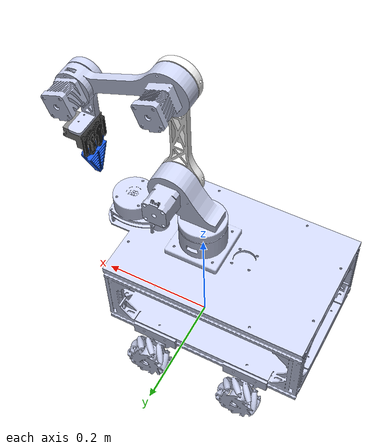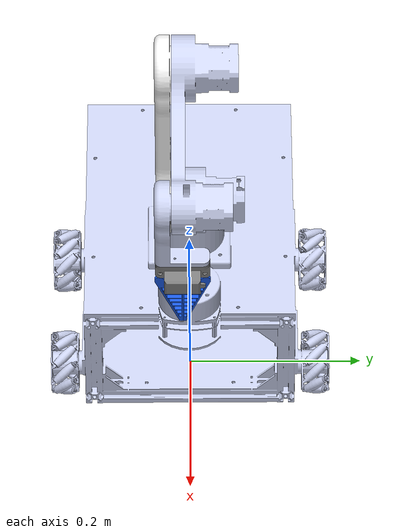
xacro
<?xml version="1.0"?>

<robot xmlns:xacro="http://www.ros.org/wiki/xacro" name="robot_arm_4_dof">

  <!-- BAN CHO ROS 2 JAZZY + GAZEBO HARMONIC -->
  <!-- use_gazebo = false (mac dinh): dung cho MoveIt demo, khong co khoi ros2_control Gazebo -->
  <!-- use_gazebo = true: bat khoi ros2_control gz_ros2_control va plugin Gazebo Harmonic -->
  <xacro:arg name="use_gazebo" default="false"/>
  <!-- use_real_hw = true: ros2_control noi voi robot that qua topic (JointStateTopicSystem) -->
  <!-- Khong bat dong thoi use_gazebo va use_real_hw -->
  <xacro:arg name="use_real_hw" default="false"/>

  <!-- GRIPPER FIN RAY, CO CAU 4 KHAU BINH HANH, MESH THAT TU STL -->
  <!-- Toa do lay tu STL, quy ve he LINK_4 (goc tai tam lo khop JOINT_4) -->
  <!-- Mat bat gripper cua LINK_4 la mat phang x = 78.371 mm, kich thuoc 25 x 60 mm -->
  <!-- Goc GRIPPER_BASE dat tai tam mat bat, y = 0, z = 13.345 mm -->
  <!-- Mat phang chua 2 ngon nam o y = +13.5 mm so voi mat phang LINK_4 -->
  <!-- Moi ngon treo bang 2 thanh song song (tay quay trong dai 33 mm, thanh ngoai dai 34 mm) -->
  <!-- 2 banh rang an khop nen 2 ben quay nguoc chieu, 2 ngon mo deu va luon song song -->
  <!-- Chi GRIPPER_JOINT duoc dieu khien, 5 khop con lai la mimic chay theo -->

  <!-- Tam mat bat gripper trong he LINK_4, don vi met -->
  <xacro:property name="grip_face_x" value="0.078371"/>
  <xacro:property name="grip_face_y" value="0.0"/>
  <xacro:property name="grip_face_z" value="0.013345"/>

  <!-- Goc quay tay quay khi mo het (rad). 0 la dong, 2 ngon cham nhau giua mat bat -->
  <!-- 0.6 rad thi moi ngon dat ra 18.6 mm. CHUA CO SO DO THAT, sua theo co cau -->
  <xacro:property name="grip_open_angle" value="1.141"/>
  <!-- Noi rong gioi han khop mot chut de khop khong ket o bien gay rung -->
  <xacro:property name="grip_limit_margin" value="0.02"/>
  <xacro:property name="grip_effort" value="2.0"/>
  <xacro:property name="grip_velocity" value="2.0"/>

  <!-- Khoi luong de gripper tinh tu the tich STL (1.02 g/cm3). Neu de co servo that thi tang len -->
  <xacro:property name="grip_base_mass" value="0.04966"/>

  <!-- MACRO TAO LINK -->

  <xacro:macro
    name="make_link"
    params="name mesh mass ixx iyy izz ixy ixz iyz origin_xyz rgba">

    <link name="${name}">

      <inertial>
        <origin xyz="${origin_xyz}" rpy="0 0 0"/>
        <mass value="${mass}"/>
        <inertia
          ixx="${ixx}"
          iyy="${iyy}"
          izz="${izz}"
          ixy="${ixy}"
          ixz="${ixz}"
          iyz="${iyz}"/>
      </inertial>

      <visual>
        <origin xyz="0 0 0" rpy="0 0 0"/>
        <geometry>
          <mesh filename="package://robot_arm_4_dof/meshes/${mesh}"/>
        </geometry>
        <material name="">
          <color rgba="${rgba}"/>
        </material>
      </visual>

      <collision>
        <origin xyz="0 0 0" rpy="0 0 0"/>
        <geometry>
          <mesh filename="package://robot_arm_4_dof/meshes/${mesh}"/>
        </geometry>
      </collision>

    </link>

  </xacro:macro>

  <!-- MACRO THONG SO VAT LY GAZEBO CHO LINK -->
  <!-- [JAZZY] Bo kp, kd, minDepth, maxVel vi chi bo giai ODE dung, Harmonic mac dinh dung DART -->
  <!-- Tham so color giu lai de cac dong goi macro phia duoi khong phai sua -->

  <xacro:macro
    name="gazebo_link"
    params="name color">

    <gazebo reference="${name}">
      <self_collide>false</self_collide>
      <mu1>0.8</mu1>
      <mu2>0.8</mu2>
    </gazebo>

  </xacro:macro>

  <!-- MACRO THONG SO VAT LY GAZEBO CHO JOINT -->
  <!-- Hai the duoi day danh cho Gazebo Classic/ODE, Harmonic bo qua, giu lai khong anh huong -->

  <xacro:macro
    name="gazebo_joint"
    params="name">

    <gazebo reference="${name}">
      <implicitSpringDamper>true</implicitSpringDamper>
      <provideFeedback>true</provideFeedback>
    </gazebo>

  </xacro:macro>

  <!-- MACRO KHOP CHO ROS2 CONTROL -->

  <xacro:macro
    name="control_joint"
    params="name initial:=0.0">

    <joint name="${name}">
      <command_interface name="position"/>
      <state_interface name="position">
        <param name="initial_value">${initial}</param>
      </state_interface>
      <state_interface name="velocity"/>
    </joint>

  </xacro:macro>

  <xacro:macro
    name="mimic_control_joint"
    params="name mult">

    <joint name="${name}">
      <state_interface name="position"/>
      <state_interface name="velocity"/>
    </joint>

  </xacro:macro>

  <!-- WORLD -->

  <link name="world"/>

  <!-- BASE LINK -->

  <xacro:make_link
    name="base_link"
    mesh="base_link.STL"
    mass="2.13756581501033"
    ixx="0.00446281750835748"
    iyy="0.00990397404875466"
    izz="0.0138898179140011"
    ixy="-1.16297685620602E-07"
    ixz="-2.19269245347853E-05"
    iyz="3.69353321786601E-07"
    origin_xyz="-0.0361911363940385 7.68209464105385E-06 -0.0733100701888367"
    rgba="0.792156862745098 0.819607843137255 0.933333333333333 1"
  />

  <!-- World -> Base -->
  <!-- File URDF moi xuat theo truc Z huong len (JOINT_1 xoay quanh Z), nen khong xoay -->
  <!-- z = 0.2 giu nhu file cu de phan de nam duoi goc toa do khong chim xuong san -->
  <joint name="world_to_base" type="fixed">
    <parent link="world"/>
    <child link="base_link"/>
    <origin xyz="0 0 0.2" rpy="0 0 0"/>
  </joint>

  <!-- LINK 1 -->

  <xacro:make_link
    name="LINK_1"
    mesh="LINK_1.STL"
    mass="0.300203978957691"
    ixx="0.000202361108949247"
    iyy="0.000322205876856537"
    izz="0.000227849313062329"
    ixy="-8.49700154808772E-07"
    ixz="-8.62565979202644E-05"
    iyz="-8.96444276733961E-07"
    origin_xyz="0.0262680360960205 0.00936849816356077 0.0385186340588518"
    rgba="0.792156862745098 0.819607843137255 0.933333333333333 1"
  />

  <joint name="JOINT_1" type="revolute">
    <origin xyz="0 0 0.0498" rpy="0 0 0"/>
    <parent link="base_link"/>
    <child link="LINK_1"/>
    <axis xyz="0 0 -1"/>
    <limit lower="-1.57" upper="1.57" effort="10" velocity="10"/>
    <dynamics damping="0.05" friction="0.0"/>
  </joint>

  <!-- LINK 2 -->

  <xacro:make_link
    name="LINK_2"
    mesh="LINK_2.STL"
    mass="0.22616543710862"
    ixx="0.00172816534876037"
    iyy="7.87016673061041E-05"
    izz="0.00178654798836788"
    ixy="-8.39655178369909E-07"
    ixz="4.02141351179285E-09"
    iyz="-1.05918369473504E-08"
    origin_xyz="9.97377047012027E-05 -0.0999401206655697 -0.00664432460836228"
    rgba="1 1 1 1"
  />

  <joint name="JOINT_2" type="revolute">
    <origin xyz="0.05 -0.020425 0.062" rpy="-1.5707963267949 0 0"/>
    <parent link="LINK_1"/>
    <child link="LINK_2"/>
    <axis xyz="0 0 -1"/>
    <limit lower="-2.618" upper="2.618" effort="10" velocity="10"/>
    <dynamics damping="0.05" friction="0.0"/>
  </joint>

  <!-- LINK 3 -->

  <xacro:make_link
    name="LINK_3"
    mesh="LINK_3.STL"
    mass="0.28089697948474"
    ixx="8.30377524821825E-05"
    iyy="0.000501796992912529"
    izz="0.000524464065541109"
    ixy="3.23085942327299E-07"
    ixz="4.2195120669867E-06"
    iyz="-2.09350472695333E-07"
    origin_xyz="0.0665688329589206 7.00383893746936E-05 0.0306161777190934"
    rgba="0.792156862745098 0.819607843137255 0.933333333333333 1"
  />

  <joint name="JOINT_3" type="revolute">
    <origin xyz="0 -0.2 0.00179999999999997" rpy="0 0 0.349065850398867"/>
    <parent link="LINK_2"/>
    <child link="LINK_3"/>
    <axis xyz="0 0 1"/>
    <limit lower="-1.57" upper="1.57" effort="10" velocity="10"/>
    <dynamics damping="0.05" friction="0.0"/>
  </joint>

  <!-- LINK 4 -->

  <xacro:make_link
    name="LINK_4"
    mesh="LINK_4.STL"
    mass="0.06452"
    ixx="1.7004E-05"
    iyy="7.0959E-05"
    izz="7.4844E-05"
    ixy="8.6595E-08"
    ixz="-6.2201E-06"
    iyz="-5.7601E-09"
    origin_xyz="0.021089 4.4987E-05 -0.0042584"
    rgba="0.79216 0.81961 0.93333 1"
  />

  <!-- Khop co tay, revolute gioi han +-1.57 rad theo thiet ke -->
  <joint name="JOINT_4" type="revolute">
    <origin xyz="0.17 0 -0.0018" rpy="0 0 1.2217"/>
    <parent link="LINK_3"/>
    <child link="LINK_4"/>
    <axis xyz="0 0 -1"/>
    <limit lower="-1.57" upper="1.57" effort="10" velocity="10"/>
    <dynamics damping="0.05" friction="0.0"/>
  </joint>

  <!-- GRIPPER -->
  <!-- LINK_4 (fixed) GRIPPER_BASE -->
  <!--   GRIPPER_BASE (GRIPPER_JOINT, dieu khien) R_CRANK (R_FINGER_JOINT, mimic) RG_FINGER -->
  <!--   GRIPPER_BASE (R_BAR_JOINT, mimic) R_BAR -->
  <!--   GRIPPER_BASE (L_CRANK_JOINT, mimic) L_CRANK (L_FINGER_JOINT, mimic) LG_FINGER -->
  <!--   GRIPPER_BASE (L_BAR_JOINT, mimic) L_BAR -->
  <!-- Mesh cua moi link da nam san trong he toa do khop cua link do -->

  <link name="GRIPPER_BASE">
    <inertial>
      <origin xyz="0.015149 -0.004647 0.000159" rpy="0 0 0"/>
      <mass value="${grip_base_mass}"/>
      <inertia
        ixx="${grip_base_mass*3.574118e-04}"
        iyy="${grip_base_mass*2.785059e-04}"
        izz="${grip_base_mass*2.074104e-04}"
        ixy="${grip_base_mass*5.437499e-06}"
        ixz="${grip_base_mass*-2.919664e-07}"
        iyz="${grip_base_mass*-1.268489e-06}"/>
    </inertial>
    <visual>
      <origin xyz="0 0 0" rpy="0 0 0"/>
      <geometry>
        <mesh filename="package://robot_arm_4_dof/meshes/GRIPPER_BASE.STL"/>
      </geometry>
      <material name="">
        <color rgba="0.5 0.5 0.5 1"/>
      </material>
    </visual>
    <collision>
      <origin xyz="0 0 0" rpy="0 0 0"/>
      <geometry>
        <mesh filename="package://robot_arm_4_dof/meshes/GRIPPER_BASE.STL"/>
      </geometry>
    </collision>
  </link>

  <!-- De gripper ap phang len mat bat cua LINK_4, khong xoay -->
  <joint name="LINK_4_TO_GRIPPER_BASE" type="fixed">
    <parent link="LINK_4"/>
    <child link="GRIPPER_BASE"/>
    <origin xyz="${grip_face_x} ${grip_face_y} ${grip_face_z}" rpy="0 0 0"/>
  </joint>

  <!-- ===== BEN +z ===== -->
  <!-- Tay quay trong, gan voi banh rang co tay servo. Khop DUOC DIEU KHIEN -->
  <!-- q duong thi dau tay quay di len +z, ngon mo ra -->
  <xacro:property name="r_crank_mass" value="0.003535"/>
  <link name="R_CRANK">
    <inertial>
      <origin xyz="0.010844 0.016335 0.000001" rpy="0 0 0"/>
      <mass value="${r_crank_mass}"/>
      <inertia
        ixx="${r_crank_mass*2.353771e-05}"
        iyy="${r_crank_mass*1.769451e-04}"
        izz="${r_crank_mass*1.618742e-04}"
        ixy="${r_crank_mass*4.240353e-06}"
        ixz="${r_crank_mass*4.914225e-08}"
        iyz="${r_crank_mass*3.176072e-10}"/>
    </inertial>
    <visual>
      <origin xyz="0 0 0" rpy="0 0 0"/>
      <geometry>
        <mesh filename="package://robot_arm_4_dof/meshes/R_CRANK.STL"/>
      </geometry>
      <material name="">
        <color rgba="0.15 0.15 0.15 1"/>
      </material>
    </visual>
    <collision>
      <origin xyz="0 0 0" rpy="0 0 0"/>
      <geometry>
        <mesh filename="package://robot_arm_4_dof/meshes/R_CRANK.STL"/>
      </geometry>
    </collision>
  </link>
  <joint name="GRIPPER_JOINT" type="revolute">
    <parent link="GRIPPER_BASE"/>
    <child link="R_CRANK"/>
    <origin xyz="0.017000 0.000000 0.010000" rpy="0 0 0"/>
    <axis xyz="0 -1 0"/>
    <limit lower="${-grip_limit_margin}" upper="${grip_open_angle + grip_limit_margin}" effort="${grip_effort}" velocity="${grip_velocity}"/>
    <dynamics damping="0.01" friction="0.0"/>
  </joint>

  <!-- Ngon +z, xoay nguoc lai dung bang goc tay quay nen luon song song -->
  <xacro:property name="rg_finger_mass" value="0.004240"/>
  <link name="RG_FINGER">
    <inertial>
      <origin xyz="0.017540 0.012444 0.001013" rpy="0 0 0"/>
      <mass value="${rg_finger_mass}"/>
      <inertia
        ixx="${rg_finger_mass*7.718029e-05}"
        iyy="${rg_finger_mass*3.971914e-04}"
        izz="${rg_finger_mass*3.359078e-04}"
        ixy="${rg_finger_mass*-2.006264e-05}"
        ixz="${rg_finger_mass*9.050043e-05}"
        iyz="${rg_finger_mass*5.446229e-06}"/>
    </inertial>
    <visual>
      <origin xyz="0 0 0" rpy="0 0 0"/>
      <geometry>
        <mesh filename="package://robot_arm_4_dof/meshes/RG_FINGER.STL"/>
      </geometry>
      <material name="">
        <color rgba="0.10 0.35 0.90 1"/>
      </material>
    </visual>
    <collision>
      <origin xyz="0 0 0" rpy="0 0 0"/>
      <geometry>
        <mesh filename="package://robot_arm_4_dof/meshes/RG_FINGER.STL"/>
      </geometry>
    </collision>
  </link>
  <joint name="R_FINGER_JOINT" type="revolute">
    <parent link="R_CRANK"/>
    <child link="RG_FINGER"/>
    <origin xyz="0.033000 0.000000 0.000000" rpy="0 0 0"/>
    <axis xyz="0 -1 0"/>
    <limit lower="${-grip_open_angle - grip_limit_margin}" upper="${grip_limit_margin}" effort="${grip_effort}" velocity="${grip_velocity}"/>
    <mimic joint="GRIPPER_JOINT" multiplier="-1" offset="0"/>
    <dynamics damping="0.01" friction="0.0"/>
  </joint>

  <!-- Thanh ngoai +z, quay cung goc voi tay quay -->
  <xacro:property name="r_bar_mass" value="0.001371"/>
  <link name="R_BAR">
    <inertial>
      <origin xyz="0.017000 0.014750 0.000000" rpy="0 0 0"/>
      <mass value="${r_bar_mass}"/>
      <inertia
        ixx="${r_bar_mass*7.142448e-06}"
        iyy="${r_bar_mass*1.290707e-04}"
        izz="${r_bar_mass*1.253032e-04}"
        ixy="${r_bar_mass*-1.300540e-19}"
        ixz="${r_bar_mass*-1.081672e-17}"
        iyz="${r_bar_mass*-2.130351e-21}"/>
    </inertial>
    <visual>
      <origin xyz="0 0 0" rpy="0 0 0"/>
      <geometry>
        <mesh filename="package://robot_arm_4_dof/meshes/R_BAR.STL"/>
      </geometry>
      <material name="">
        <color rgba="0.15 0.15 0.15 1"/>
      </material>
    </visual>
    <collision>
      <origin xyz="0 0 0" rpy="0 0 0"/>
      <geometry>
        <mesh filename="package://robot_arm_4_dof/meshes/R_BAR.STL"/>
      </geometry>
    </collision>
  </link>
  <joint name="R_BAR_JOINT" type="revolute">
    <parent link="GRIPPER_BASE"/>
    <child link="R_BAR"/>
    <origin xyz="0.008000 0.000000 0.026000" rpy="0 0 0"/>
    <axis xyz="0 -1 0"/>
    <limit lower="${-grip_limit_margin}" upper="${grip_open_angle + grip_limit_margin}" effort="${grip_effort}" velocity="${grip_velocity}"/>
    <mimic joint="GRIPPER_JOINT" multiplier="1" offset="0"/>
    <dynamics damping="0.01" friction="0.0"/>
  </joint>

  <!-- ===== BEN -z, doi xung qua banh rang nen truc khop dao chieu ===== -->
  <xacro:property name="l_crank_mass" value="0.003499"/>
  <link name="L_CRANK">
    <inertial>
      <origin xyz="0.010409 0.015438 -0.000039" rpy="0 0 0"/>
      <mass value="${l_crank_mass}"/>
      <inertia
        ixx="${l_crank_mass*2.157730e-05}"
        iyy="${l_crank_mass*1.813431e-04}"
        izz="${l_crank_mass*1.655682e-04}"
        ixy="${l_crank_mass*1.613590e-06}"
        ixz="${l_crank_mass*4.265951e-07}"
        iyz="${l_crank_mass*-2.306308e-09}"/>
    </inertial>
    <visual>
      <origin xyz="0 0 0" rpy="0 0 0"/>
      <geometry>
        <mesh filename="package://robot_arm_4_dof/meshes/L_CRANK.STL"/>
      </geometry>
      <material name="">
        <color rgba="0.15 0.15 0.15 1"/>
      </material>
    </visual>
    <collision>
      <origin xyz="0 0 0" rpy="0 0 0"/>
      <geometry>
        <mesh filename="package://robot_arm_4_dof/meshes/L_CRANK.STL"/>
      </geometry>
    </collision>
  </link>
  <joint name="L_CRANK_JOINT" type="revolute">
    <parent link="GRIPPER_BASE"/>
    <child link="L_CRANK"/>
    <origin xyz="0.017000 0.000000 -0.010142" rpy="0 0 0"/>
    <axis xyz="0 1 0"/>
    <limit lower="${-grip_limit_margin}" upper="${grip_open_angle + grip_limit_margin}" effort="${grip_effort}" velocity="${grip_velocity}"/>
    <mimic joint="GRIPPER_JOINT" multiplier="1" offset="0"/>
    <dynamics damping="0.01" friction="0.0"/>
  </joint>

  <xacro:property name="lg_finger_mass" value="0.004258"/>
  <link name="LG_FINGER">
    <inertial>
      <origin xyz="0.017593 0.012448 -0.000741" rpy="0 0 0"/>
      <mass value="${lg_finger_mass}"/>
      <inertia
        ixx="${lg_finger_mass*7.740724e-05}"
        iyy="${lg_finger_mass*3.974602e-04}"
        izz="${lg_finger_mass*3.359607e-04}"
        ixy="${lg_finger_mass*-2.003695e-05}"
        ixz="${lg_finger_mass*-9.063254e-05}"
        iyz="${lg_finger_mass*-5.462800e-06}"/>
    </inertial>
    <visual>
      <origin xyz="0 0 0" rpy="0 0 0"/>
      <geometry>
        <mesh filename="package://robot_arm_4_dof/meshes/LG_FINGER.STL"/>
      </geometry>
      <material name="">
        <color rgba="0.10 0.35 0.90 1"/>
      </material>
    </visual>
    <collision>
      <origin xyz="0 0 0" rpy="0 0 0"/>
      <geometry>
        <mesh filename="package://robot_arm_4_dof/meshes/LG_FINGER.STL"/>
      </geometry>
    </collision>
  </link>
  <joint name="L_FINGER_JOINT" type="revolute">
    <parent link="L_CRANK"/>
    <child link="LG_FINGER"/>
    <origin xyz="0.033000 0.000000 -0.000080" rpy="0 0 0"/>
    <axis xyz="0 1 0"/>
    <limit lower="${-grip_open_angle - grip_limit_margin}" upper="${grip_limit_margin}" effort="${grip_effort}" velocity="${grip_velocity}"/>
    <mimic joint="GRIPPER_JOINT" multiplier="-1" offset="0"/>
    <dynamics damping="0.01" friction="0.0"/>
  </joint>

  <xacro:property name="l_bar_mass" value="0.001371"/>
  <link name="L_BAR">
    <inertial>
      <origin xyz="0.017000 0.014750 -0.000000" rpy="0 0 0"/>
      <mass value="${l_bar_mass}"/>
      <inertia
        ixx="${l_bar_mass*7.142449e-06}"
        iyy="${l_bar_mass*1.290707e-04}"
        izz="${l_bar_mass*1.253032e-04}"
        ixy="${l_bar_mass*-1.734054e-19}"
        ixz="${l_bar_mass*-1.563382e-20}"
        iyz="${l_bar_mass*-4.563922e-21}"/>
    </inertial>
    <visual>
      <origin xyz="0 0 0" rpy="0 0 0"/>
      <geometry>
        <mesh filename="package://robot_arm_4_dof/meshes/L_BAR.STL"/>
      </geometry>
      <material name="">
        <color rgba="0.15 0.15 0.15 1"/>
      </material>
    </visual>
    <collision>
      <origin xyz="0 0 0" rpy="0 0 0"/>
      <geometry>
        <mesh filename="package://robot_arm_4_dof/meshes/L_BAR.STL"/>
      </geometry>
    </collision>
  </link>
  <joint name="L_BAR_JOINT" type="revolute">
    <parent link="GRIPPER_BASE"/>
    <child link="L_BAR"/>
    <origin xyz="0.008000 0.000000 -0.026000" rpy="0 0 0"/>
    <axis xyz="0 1 0"/>
    <limit lower="${-grip_limit_margin}" upper="${grip_open_angle + grip_limit_margin}" effort="${grip_effort}" velocity="${grip_velocity}"/>
    <mimic joint="GRIPPER_JOINT" multiplier="1" offset="0"/>
    <dynamics damping="0.01" friction="0.0"/>
  </joint>

  <!-- TCP tai mui 2 ngon khi dong, tren mat phang ngon y = 13.5 mm -->
  <link name="GRIPPER_TCP"/>
  <joint name="GRIPPER_TCP_FIXED" type="fixed">
    <parent link="GRIPPER_BASE"/>
    <child link="GRIPPER_TCP"/>
    <origin xyz="0.104100 0.0135 0" rpy="0 0 0"/>
  </joint>

  <!-- GAZEBO VAT LY LINK -->

  <xacro:gazebo_link name="base_link" color="Blue"/>
  <xacro:gazebo_link name="LINK_1" color="White"/>
  <xacro:gazebo_link name="LINK_2" color="Blue"/>
  <xacro:gazebo_link name="LINK_3" color="White"/>
  <xacro:gazebo_link name="LINK_4" color="Blue"/>
  <xacro:gazebo_link name="GRIPPER_BASE" color="Grey"/>
  <xacro:gazebo_link name="R_CRANK" color="DarkGrey"/>
  <xacro:gazebo_link name="L_CRANK" color="DarkGrey"/>
  <xacro:gazebo_link name="R_BAR" color="DarkGrey"/>
  <xacro:gazebo_link name="L_BAR" color="DarkGrey"/>
  <xacro:gazebo_link name="LG_FINGER" color="Blue"/>
  <xacro:gazebo_link name="RG_FINGER" color="Blue"/>

  <!-- GAZEBO VAT LY JOINT -->

  <xacro:gazebo_joint name="JOINT_1"/>
  <xacro:gazebo_joint name="JOINT_2"/>
  <xacro:gazebo_joint name="JOINT_3"/>
  <xacro:gazebo_joint name="JOINT_4"/>
  <xacro:gazebo_joint name="GRIPPER_JOINT"/>
  <xacro:gazebo_joint name="R_FINGER_JOINT"/>
  <xacro:gazebo_joint name="R_BAR_JOINT"/>
  <xacro:gazebo_joint name="L_CRANK_JOINT"/>
  <xacro:gazebo_joint name="L_FINGER_JOINT"/>
  <xacro:gazebo_joint name="L_BAR_JOINT"/>

  <!-- ROS2 CONTROL + PLUGIN GAZEBO HARMONIC, CHI BAT KHI use_gazebo=true -->
  <!-- Khi chay MoveIt demo (use_gazebo=false), MoveIt tu them khoi FakeSystem rieng -->

  <xacro:if value="$(arg use_gazebo)">

    <ros2_control name="GazeboSimSystem" type="system">

      <hardware>
        <!-- [JAZZY] thay gazebo_ros2_control/GazeboSystem (Gazebo Classic) -->
        <plugin>gz_ros2_control/GazeboSimSystem</plugin>
      </hardware>

      <xacro:control_joint name="JOINT_1"/>
      <xacro:control_joint name="JOINT_2"/>
      <xacro:control_joint name="JOINT_3"/>
      <xacro:control_joint name="JOINT_4"/>

      <xacro:control_joint name="GRIPPER_JOINT" initial="0.0"/>
      <xacro:mimic_control_joint name="R_FINGER_JOINT" mult="-1"/>
      <xacro:mimic_control_joint name="R_BAR_JOINT" mult="1"/>
      <xacro:mimic_control_joint name="L_CRANK_JOINT" mult="1"/>
      <xacro:mimic_control_joint name="L_FINGER_JOINT" mult="-1"/>
      <xacro:mimic_control_joint name="L_BAR_JOINT" mult="1"/>

    </ros2_control>

    <!-- [JAZZY] thay libgazebo_ros2_control.so (Gazebo Classic) -->
    <!-- Ten package trong $(find ...) phai trung voi package chua config/final.yaml -->
    <gazebo>
      <plugin
        filename="gz_ros2_control-system"
        name="gz_ros2_control::GazeboSimROS2ControlPlugin">
        <parameters>$(find robot_arm_4_dof)/config/final.yaml</parameters>
      </plugin>
    </gazebo>

  </xacro:if>

  <!-- ROS2 CONTROL CHO ROBOT THAT, CHI BAT KHI use_real_hw=true -->
  <!-- Plugin co san: ghi lenh khop ra /robot_joint_commands, doc trang thai tu /robot_joint_states -->
  <!-- Node stm32_bridge_node.py chuyen 2 topic nay qua USART xuong STM32 -->
  <!-- Chi khai bao 5 khop co dong co. 5 khop mimic cua kep do robot_state_publisher tu tinh -->

  <xacro:if value="$(arg use_real_hw)">
    <ros2_control name="RealArmSystem" type="system">
      <hardware>
        <plugin>joint_state_topic_hardware_interface/JointStateTopicSystem</plugin>
        <param name="joint_commands_topic">/robot_joint_commands</param>
        <param name="joint_states_topic">/robot_joint_states</param>
        <!-- -1: luon phat lenh moi chu ky, ke ca khi dung yen -->
        <param name="trigger_joint_command_threshold">-1</param>
      </hardware>
      <xacro:control_joint name="JOINT_1"/>
      <xacro:control_joint name="JOINT_2"/>
      <xacro:control_joint name="JOINT_3"/>
      <xacro:control_joint name="JOINT_4"/>
      <xacro:control_joint name="GRIPPER_JOINT" initial="0.0"/>
    </ros2_control>
  </xacro:if>

</robot>
